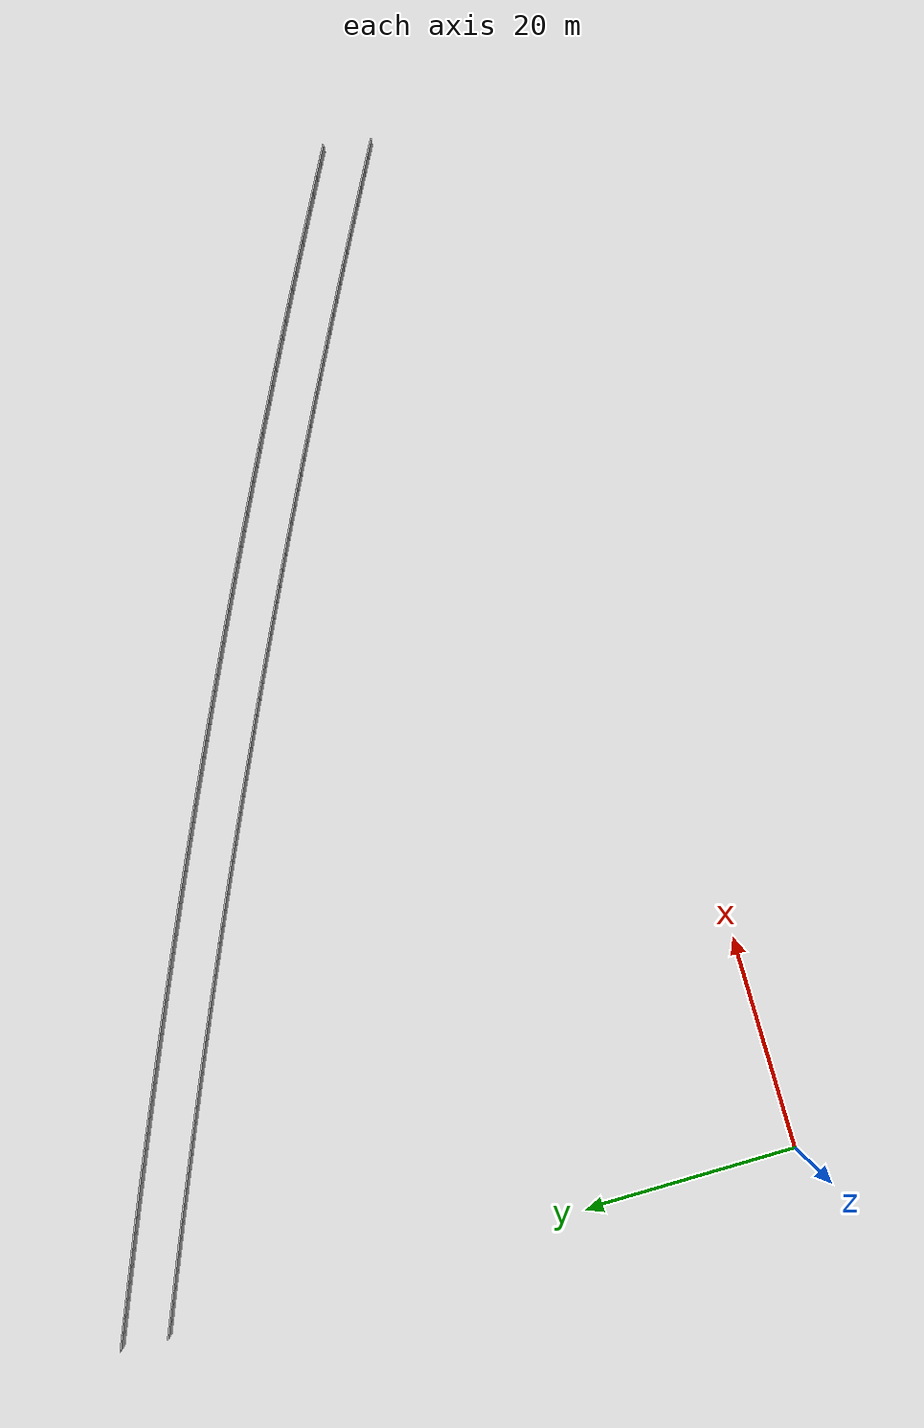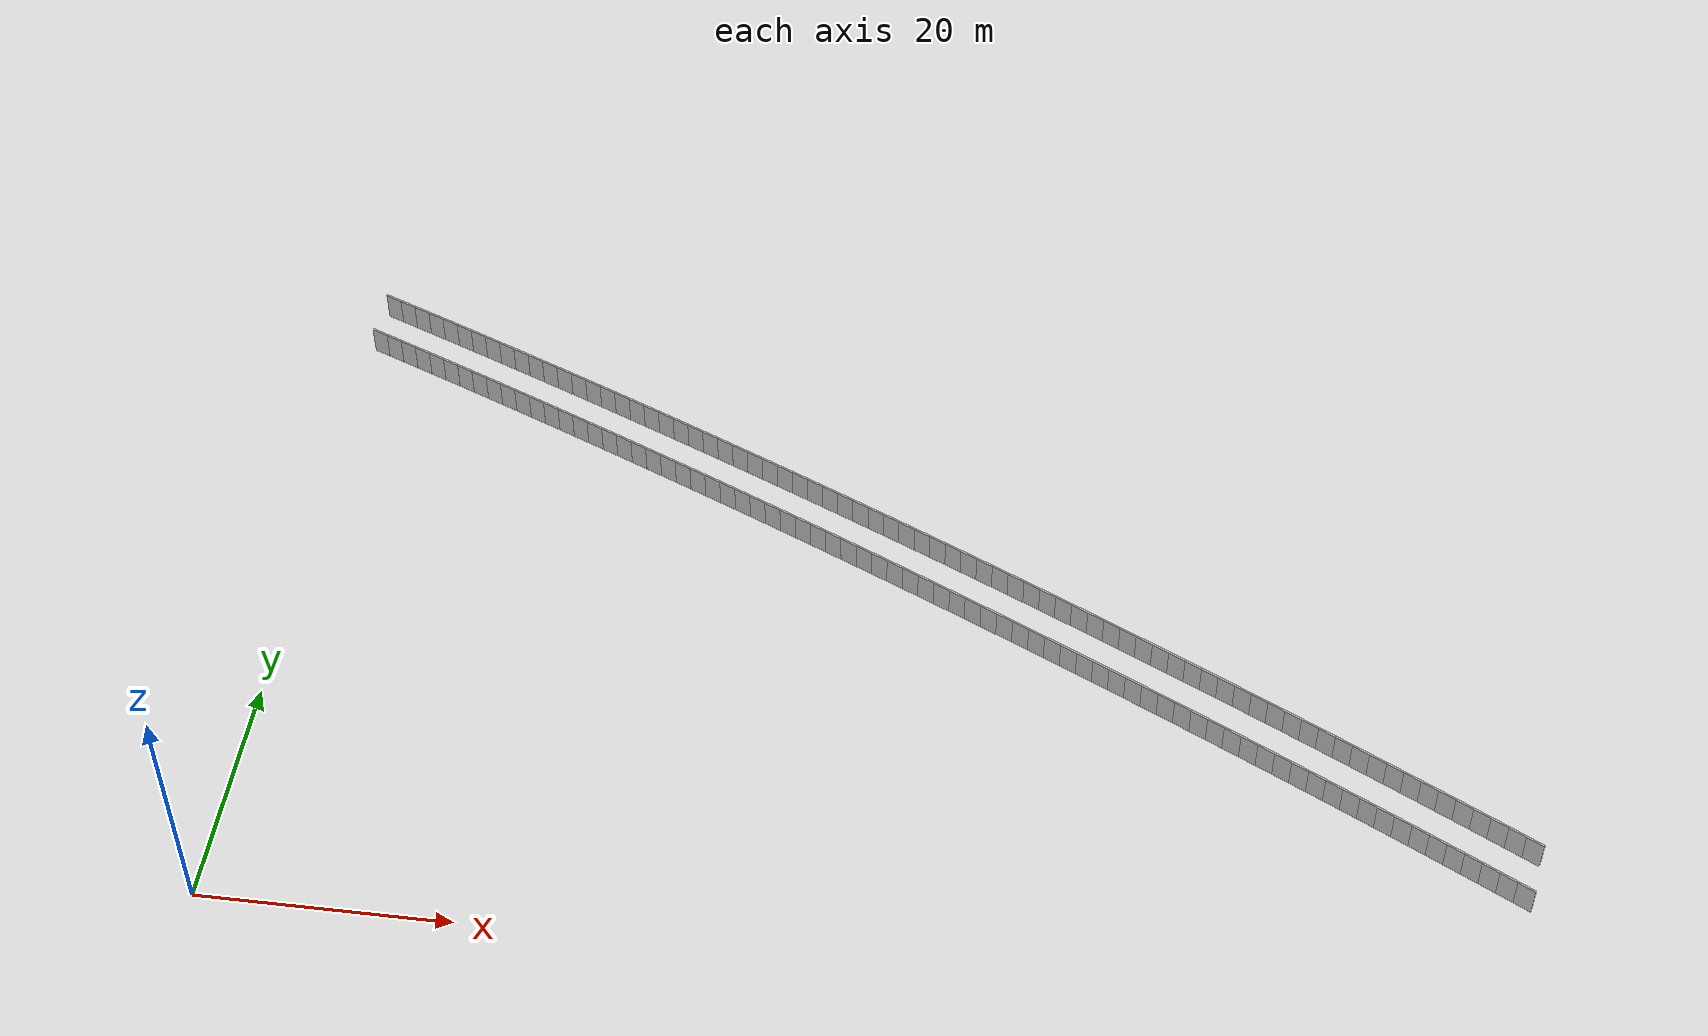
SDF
<sdf version="1.6">
 <model name="sps_1722">
  <static>1</static>
  <allow_auto_disable>0</allow_auto_disable>
  <link name="Wall10633">
   <collision name="collision"><geometry><box><size>1.49658 0.15 2.5</size></box></geometry></collision>
   <visual name="visual">
    <geometry><box><size>1.49658 0.15 2.5</size></box></geometry>
    <transparency>0.0</transparency>
   </visual>
   <pose>98.8934 11.6725 1.25 0 -0 2.63388</pose>
  </link>
  <link name="Wall10634">
   <collision name="collision"><geometry><box><size>1.49649 0.15 2.5</size></box></geometry></collision>
   <visual name="visual">
    <geometry><box><size>1.49649 0.15 2.5</size></box></geometry>
    <transparency>0.0</transparency>
   </visual>
   <pose>97.585 12.3989 1.25 0 -0 2.63567</pose>
  </link>
  <link name="Wall10635">
   <collision name="collision"><geometry><box><size>1.49646 0.15 2.5</size></box></geometry></collision>
   <visual name="visual">
    <geometry><box><size>1.49646 0.15 2.5</size></box></geometry>
    <transparency>0.0</transparency>
   </visual>
   <pose>96.2754 13.1232 1.25 0 -0 2.63706</pose>
  </link>
  <link name="Wall10636">
   <collision name="collision"><geometry><box><size>1.49663 0.15 2.5</size></box></geometry></collision>
   <visual name="visual">
    <geometry><box><size>1.49663 0.15 2.5</size></box></geometry>
    <transparency>0.0</transparency>
   </visual>
   <pose>94.9647 13.8455 1.25 0 -0 2.6388</pose>
  </link>
  <link name="Wall10637">
   <collision name="collision"><geometry><box><size>1.49643 0.15 2.5</size></box></geometry></collision>
   <visual name="visual">
    <geometry><box><size>1.49643 0.15 2.5</size></box></geometry>
    <transparency>0.0</transparency>
   </visual>
   <pose>93.6529 14.5656 1.25 0 -0 2.6404</pose>
  </link>
  <link name="Wall10638">
   <collision name="collision"><geometry><box><size>1.49649 0.15 2.5</size></box></geometry></collision>
   <visual name="visual">
    <geometry><box><size>1.49649 0.15 2.5</size></box></geometry>
    <transparency>0.0</transparency>
   </visual>
   <pose>92.34 15.2837 1.25 0 -0 2.64177</pose>
  </link>
  <link name="Wall10639">
   <collision name="collision"><geometry><box><size>1.49655 0.15 2.5</size></box></geometry></collision>
   <visual name="visual">
    <geometry><box><size>1.49655 0.15 2.5</size></box></geometry>
    <transparency>0.0</transparency>
   </visual>
   <pose>91.0258 15.9997 1.25 0 -0 2.64365</pose>
  </link>
  <link name="Wall10640">
   <collision name="collision"><geometry><box><size>1.49656 0.15 2.5</size></box></geometry></collision>
   <visual name="visual">
    <geometry><box><size>1.49656 0.15 2.5</size></box></geometry>
    <transparency>0.0</transparency>
   </visual>
   <pose>89.7105 16.7136 1.25 0 -0 2.645</pose>
  </link>
  <link name="Wall10641">
   <collision name="collision"><geometry><box><size>1.49654 0.15 2.5</size></box></geometry></collision>
   <visual name="visual">
    <geometry><box><size>1.49654 0.15 2.5</size></box></geometry>
    <transparency>0.0</transparency>
   </visual>
   <pose>88.3942 17.4255 1.25 0 -0 2.64666</pose>
  </link>
  <link name="Wall10642">
   <collision name="collision"><geometry><box><size>1.49663 0.15 2.5</size></box></geometry></collision>
   <visual name="visual">
    <geometry><box><size>1.49663 0.15 2.5</size></box></geometry>
    <transparency>0.0</transparency>
   </visual>
   <pose>87.0766 18.1352 1.25 0 -0 2.64836</pose>
  </link>
  <link name="Wall10643">
   <collision name="collision"><geometry><box><size>1.49632 0.15 2.5</size></box></geometry></collision>
   <visual name="visual">
    <geometry><box><size>1.49632 0.15 2.5</size></box></geometry>
    <transparency>0.0</transparency>
   </visual>
   <pose>85.758 18.8428 1.25 0 -0 2.64978</pose>
  </link>
  <link name="Wall10644">
   <collision name="collision"><geometry><box><size>1.49655 0.15 2.5</size></box></geometry></collision>
   <visual name="visual">
    <geometry><box><size>1.49655 0.15 2.5</size></box></geometry>
    <transparency>0.0</transparency>
   </visual>
   <pose>84.4383 19.5483 1.25 0 -0 2.65157</pose>
  </link>
  <link name="Wall10645">
   <collision name="collision"><geometry><box><size>1.49652 0.15 2.5</size></box></geometry></collision>
   <visual name="visual">
    <geometry><box><size>1.49652 0.15 2.5</size></box></geometry>
    <transparency>0.0</transparency>
   </visual>
   <pose>83.1173 20.2517 1.25 0 -0 2.65299</pose>
  </link>
  <link name="Wall10646">
   <collision name="collision"><geometry><box><size>1.49641 0.15 2.5</size></box></geometry></collision>
   <visual name="visual">
    <geometry><box><size>1.49641 0.15 2.5</size></box></geometry>
    <transparency>0.0</transparency>
   </visual>
   <pose>81.7954 20.9531 1.25 0 -0 2.65452</pose>
  </link>
  <link name="Wall10647">
   <collision name="collision"><geometry><box><size>1.49662 0.15 2.5</size></box></geometry></collision>
   <visual name="visual">
    <geometry><box><size>1.49662 0.15 2.5</size></box></geometry>
    <transparency>0.0</transparency>
   </visual>
   <pose>80.4723 21.6524 1.25 0 -0 2.65626</pose>
  </link>
  <link name="Wall10648">
   <collision name="collision"><geometry><box><size>1.49646 0.15 2.5</size></box></geometry></collision>
   <visual name="visual">
    <geometry><box><size>1.49646 0.15 2.5</size></box></geometry>
    <transparency>0.0</transparency>
   </visual>
   <pose>79.1481 22.3495 1.25 0 -0 2.65786</pose>
  </link>
  <link name="Wall10649">
   <collision name="collision"><geometry><box><size>1.49656 0.15 2.5</size></box></geometry></collision>
   <visual name="visual">
    <geometry><box><size>1.49656 0.15 2.5</size></box></geometry>
    <transparency>0.0</transparency>
   </visual>
   <pose>77.8228 23.0446 1.25 0 -0 2.65923</pose>
  </link>
  <link name="Wall10650">
   <collision name="collision"><geometry><box><size>1.49654 0.15 2.5</size></box></geometry></collision>
   <visual name="visual">
    <geometry><box><size>1.49654 0.15 2.5</size></box></geometry>
    <transparency>0.0</transparency>
   </visual>
   <pose>76.4964 23.7376 1.25 0 -0 2.66102</pose>
  </link>
  <link name="Wall10651">
   <collision name="collision"><geometry><box><size>1.49645 0.15 2.5</size></box></geometry></collision>
   <visual name="visual">
    <geometry><box><size>1.49645 0.15 2.5</size></box></geometry>
    <transparency>0.0</transparency>
   </visual>
   <pose>75.1688 24.4284 1.25 0 -0 2.66255</pose>
  </link>
  <link name="Wall10652">
   <collision name="collision"><geometry><box><size>1.49658 0.15 2.5</size></box></geometry></collision>
   <visual name="visual">
    <geometry><box><size>1.49658 0.15 2.5</size></box></geometry>
    <transparency>0.0</transparency>
   </visual>
   <pose>73.8403 25.1172 1.25 0 -0 2.66406</pose>
  </link>
  <link name="Wall10653">
   <collision name="collision"><geometry><box><size>1.49633 0.15 2.5</size></box></geometry></collision>
   <visual name="visual">
    <geometry><box><size>1.49633 0.15 2.5</size></box></geometry>
    <transparency>0.0</transparency>
   </visual>
   <pose>72.5107 25.8039 1.25 0 -0 2.66563</pose>
  </link>
  <link name="Wall10654">
   <collision name="collision"><geometry><box><size>1.49666 0.15 2.5</size></box></geometry></collision>
   <visual name="visual">
    <geometry><box><size>1.49666 0.15 2.5</size></box></geometry>
    <transparency>0.0</transparency>
   </visual>
   <pose>71.18 26.4885 1.25 0 -0 2.66726</pose>
  </link>
  <link name="Wall10655">
   <collision name="collision"><geometry><box><size>1.49652 0.15 2.5</size></box></geometry></collision>
   <visual name="visual">
    <geometry><box><size>1.49652 0.15 2.5</size></box></geometry>
    <transparency>0.0</transparency>
   </visual>
   <pose>69.848 27.171 1.25 0 -0 2.66886</pose>
  </link>
  <link name="Wall10656">
   <collision name="collision"><geometry><box><size>1.49639 0.15 2.5</size></box></geometry></collision>
   <visual name="visual">
    <geometry><box><size>1.49639 0.15 2.5</size></box></geometry>
    <transparency>0.0</transparency>
   </visual>
   <pose>68.5152 27.8513 1.25 0 -0 2.67047</pose>
  </link>
  <link name="Wall10657">
   <collision name="collision"><geometry><box><size>1.4966 0.15 2.5</size></box></geometry></collision>
   <visual name="visual">
    <geometry><box><size>1.4966 0.15 2.5</size></box></geometry>
    <transparency>0.0</transparency>
   </visual>
   <pose>67.1812 28.5295 1.25 0 -0 2.672</pose>
  </link>
  <link name="Wall10658">
   <collision name="collision"><geometry><box><size>1.49659 0.15 2.5</size></box></geometry></collision>
   <visual name="visual">
    <geometry><box><size>1.49659 0.15 2.5</size></box></geometry>
    <transparency>0.0</transparency>
   </visual>
   <pose>65.8461 29.2057 1.25 0 -0 2.67355</pose>
  </link>
  <link name="Wall10659">
   <collision name="collision"><geometry><box><size>1.49639 0.15 2.5</size></box></geometry></collision>
   <visual name="visual">
    <geometry><box><size>1.49639 0.15 2.5</size></box></geometry>
    <transparency>0.0</transparency>
   </visual>
   <pose>64.5099 29.8797 1.25 0 -0 2.67526</pose>
  </link>
  <link name="Wall10660">
   <collision name="collision"><geometry><box><size>1.49655 0.15 2.5</size></box></geometry></collision>
   <visual name="visual">
    <geometry><box><size>1.49655 0.15 2.5</size></box></geometry>
    <transparency>0.0</transparency>
   </visual>
   <pose>63.1728 30.5515 1.25 0 -0 2.67678</pose>
  </link>
  <link name="Wall10661">
   <collision name="collision"><geometry><box><size>1.49654 0.15 2.5</size></box></geometry></collision>
   <visual name="visual">
    <geometry><box><size>1.49654 0.15 2.5</size></box></geometry>
    <transparency>0.0</transparency>
   </visual>
   <pose>61.8345 31.2213 1.25 0 -0 2.67833</pose>
  </link>
  <link name="Wall10662">
   <collision name="collision"><geometry><box><size>1.49668 0.15 2.5</size></box></geometry></collision>
   <visual name="visual">
    <geometry><box><size>1.49668 0.15 2.5</size></box></geometry>
    <transparency>0.0</transparency>
   </visual>
   <pose>60.495 31.889 1.25 0 -0 2.67997</pose>
  </link>
  <link name="Wall10663">
   <collision name="collision"><geometry><box><size>1.49634 0.15 2.5</size></box></geometry></collision>
   <visual name="visual">
    <geometry><box><size>1.49634 0.15 2.5</size></box></geometry>
    <transparency>0.0</transparency>
   </visual>
   <pose>59.1547 32.5545 1.25 0 -0 2.68154</pose>
  </link>
  <link name="Wall10664">
   <collision name="collision"><geometry><box><size>1.49654 0.15 2.5</size></box></geometry></collision>
   <visual name="visual">
    <geometry><box><size>1.49654 0.15 2.5</size></box></geometry>
    <transparency>0.0</transparency>
   </visual>
   <pose>57.8133 33.2178 1.25 0 -0 2.6832</pose>
  </link>
  <link name="Wall10665">
   <collision name="collision"><geometry><box><size>1.49647 0.15 2.5</size></box></geometry></collision>
   <visual name="visual">
    <geometry><box><size>1.49647 0.15 2.5</size></box></geometry>
    <transparency>0.0</transparency>
   </visual>
   <pose>56.4708 33.879 1.25 0 -0 2.68468</pose>
  </link>
  <link name="Wall10666">
   <collision name="collision"><geometry><box><size>1.49641 0.15 2.5</size></box></geometry></collision>
   <visual name="visual">
    <geometry><box><size>1.49641 0.15 2.5</size></box></geometry>
    <transparency>0.0</transparency>
   </visual>
   <pose>55.1273 34.5381 1.25 0 -0 2.68634</pose>
  </link>
  <link name="Wall10667">
   <collision name="collision"><geometry><box><size>1.49673 0.15 2.5</size></box></geometry></collision>
   <visual name="visual">
    <geometry><box><size>1.49673 0.15 2.5</size></box></geometry>
    <transparency>0.0</transparency>
   </visual>
   <pose>53.7827 35.1952 1.25 0 -0 2.68776</pose>
  </link>
  <link name="Wall10668">
   <collision name="collision"><geometry><box><size>1.4964 0.15 2.5</size></box></geometry></collision>
   <visual name="visual">
    <geometry><box><size>1.4964 0.15 2.5</size></box></geometry>
    <transparency>0.0</transparency>
   </visual>
   <pose>52.4371 35.8502 1.25 0 -0 2.68942</pose>
  </link>
  <link name="Wall10669">
   <collision name="collision"><geometry><box><size>1.49654 0.15 2.5</size></box></geometry></collision>
   <visual name="visual">
    <geometry><box><size>1.49654 0.15 2.5</size></box></geometry>
    <transparency>0.0</transparency>
   </visual>
   <pose>51.0904 36.5029 1.25 0 -0 2.6911</pose>
  </link>
  <link name="Wall10670">
   <collision name="collision"><geometry><box><size>1.49646 0.15 2.5</size></box></geometry></collision>
   <visual name="visual">
    <geometry><box><size>1.49646 0.15 2.5</size></box></geometry>
    <transparency>0.0</transparency>
   </visual>
   <pose>49.7427 37.1534 1.25 0 -0 2.6927</pose>
  </link>
  <link name="Wall10671">
   <collision name="collision"><geometry><box><size>1.49647 0.15 2.5</size></box></geometry></collision>
   <visual name="visual">
    <geometry><box><size>1.49647 0.15 2.5</size></box></geometry>
    <transparency>0.0</transparency>
   </visual>
   <pose>48.394 37.8018 1.25 0 -0 2.6942</pose>
  </link>
  <link name="Wall10672">
   <collision name="collision"><geometry><box><size>1.4967 0.15 2.5</size></box></geometry></collision>
   <visual name="visual">
    <geometry><box><size>1.4967 0.15 2.5</size></box></geometry>
    <transparency>0.0</transparency>
   </visual>
   <pose>47.0442 38.4482 1.25 0 -0 2.69576</pose>
  </link>
  <link name="Wall10673">
   <collision name="collision"><geometry><box><size>1.49639 0.15 2.5</size></box></geometry></collision>
   <visual name="visual">
    <geometry><box><size>1.49639 0.15 2.5</size></box></geometry>
    <transparency>0.0</transparency>
   </visual>
   <pose>45.6934 39.0924 1.25 0 -0 2.69743</pose>
  </link>
  <link name="Wall10674">
   <collision name="collision"><geometry><box><size>1.49663 0.15 2.5</size></box></geometry></collision>
   <visual name="visual">
    <geometry><box><size>1.49663 0.15 2.5</size></box></geometry>
    <transparency>0.0</transparency>
   </visual>
   <pose>44.3416 39.7344 1.25 0 -0 2.69899</pose>
  </link>
  <link name="Wall10675">
   <collision name="collision"><geometry><box><size>1.49635 0.15 2.5</size></box></geometry></collision>
   <visual name="visual">
    <geometry><box><size>1.49635 0.15 2.5</size></box></geometry>
    <transparency>0.0</transparency>
   </visual>
   <pose>42.9889 40.3743 1.25 0 -0 2.70053</pose>
  </link>
  <link name="Wall10676">
   <collision name="collision"><geometry><box><size>1.49651 0.15 2.5</size></box></geometry></collision>
   <visual name="visual">
    <geometry><box><size>1.49651 0.15 2.5</size></box></geometry>
    <transparency>0.0</transparency>
   </visual>
   <pose>41.6352 41.0121 1.25 0 -0 2.70202</pose>
  </link>
  <link name="Wall10677">
   <collision name="collision"><geometry><box><size>1.49647 0.15 2.5</size></box></geometry></collision>
   <visual name="visual">
    <geometry><box><size>1.49647 0.15 2.5</size></box></geometry>
    <transparency>0.0</transparency>
   </visual>
   <pose>40.2804 41.6477 1.25 0 -0 2.70381</pose>
  </link>
  <link name="Wall10678">
   <collision name="collision"><geometry><box><size>1.49669 0.15 2.5</size></box></geometry></collision>
   <visual name="visual">
    <geometry><box><size>1.49669 0.15 2.5</size></box></geometry>
    <transparency>0.0</transparency>
   </visual>
   <pose>38.9245 42.2812 1.25 0 -0 2.70523</pose>
  </link>
  <link name="Wall10679">
   <collision name="collision"><geometry><box><size>1.49635 0.15 2.5</size></box></geometry></collision>
   <visual name="visual">
    <geometry><box><size>1.49635 0.15 2.5</size></box></geometry>
    <transparency>0.0</transparency>
   </visual>
   <pose>37.5676 42.9126 1.25 0 -0 2.70688</pose>
  </link>
  <link name="Wall10680">
   <collision name="collision"><geometry><box><size>1.49664 0.15 2.5</size></box></geometry></collision>
   <visual name="visual">
    <geometry><box><size>1.49664 0.15 2.5</size></box></geometry>
    <transparency>0.0</transparency>
   </visual>
   <pose>36.2099 43.5418 1.25 0 -0 2.70841</pose>
  </link>
  <link name="Wall10681">
   <collision name="collision"><geometry><box><size>1.49663 0.15 2.5</size></box></geometry></collision>
   <visual name="visual">
    <geometry><box><size>1.49663 0.15 2.5</size></box></geometry>
    <transparency>0.0</transparency>
   </visual>
   <pose>34.8509 44.1689 1.25 0 -0 2.71007</pose>
  </link>
  <link name="Wall10682">
   <collision name="collision"><geometry><box><size>1.49638 0.15 2.5</size></box></geometry></collision>
   <visual name="visual">
    <geometry><box><size>1.49638 0.15 2.5</size></box></geometry>
    <transparency>0.0</transparency>
   </visual>
   <pose>33.4911 44.7938 1.25 0 -0 2.71161</pose>
  </link>
  <link name="Wall10683">
   <collision name="collision"><geometry><box><size>1.4966 0.15 2.5</size></box></geometry></collision>
   <visual name="visual">
    <geometry><box><size>1.4966 0.15 2.5</size></box></geometry>
    <transparency>0.0</transparency>
   </visual>
   <pose>32.1304 45.4165 1.25 0 -0 2.71324</pose>
  </link>
  <link name="Wall10684">
   <collision name="collision"><geometry><box><size>1.49639 0.15 2.5</size></box></geometry></collision>
   <visual name="visual">
    <geometry><box><size>1.49639 0.15 2.5</size></box></geometry>
    <transparency>0.0</transparency>
   </visual>
   <pose>30.7686 46.037 1.25 0 -0 2.71484</pose>
  </link>
  <link name="Wall10685">
   <collision name="collision"><geometry><box><size>1.49643 0.15 2.5</size></box></geometry></collision>
   <visual name="visual">
    <geometry><box><size>1.49643 0.15 2.5</size></box></geometry>
    <transparency>0.0</transparency>
   </visual>
   <pose>29.4059 46.6553 1.25 0 -0 2.71646</pose>
  </link>
  <link name="Wall10686">
   <collision name="collision"><geometry><box><size>1.49651 0.15 2.5</size></box></geometry></collision>
   <visual name="visual">
    <geometry><box><size>1.49651 0.15 2.5</size></box></geometry>
    <transparency>0.0</transparency>
   </visual>
   <pose>28.0422 47.2715 1.25 0 -0 2.71792</pose>
  </link>
  <link name="Wall10687">
   <collision name="collision"><geometry><box><size>1.49653 0.15 2.5</size></box></geometry></collision>
   <visual name="visual">
    <geometry><box><size>1.49653 0.15 2.5</size></box></geometry>
    <transparency>0.0</transparency>
   </visual>
   <pose>26.6775 47.8856 1.25 0 -0 2.71958</pose>
  </link>
  <link name="Wall10688">
   <collision name="collision"><geometry><box><size>1.49647 0.15 2.5</size></box></geometry></collision>
   <visual name="visual">
    <geometry><box><size>1.49647 0.15 2.5</size></box></geometry>
    <transparency>0.0</transparency>
   </visual>
   <pose>25.3118 48.4975 1.25 0 -0 2.72117</pose>
  </link>
  <link name="Wall10689">
   <collision name="collision"><geometry><box><size>1.4966 0.15 2.5</size></box></geometry></collision>
   <visual name="visual">
    <geometry><box><size>1.4966 0.15 2.5</size></box></geometry>
    <transparency>0.0</transparency>
   </visual>
   <pose>23.9451 49.1072 1.25 0 -0 2.72277</pose>
  </link>
  <link name="Wall10690">
   <collision name="collision"><geometry><box><size>1.49643 0.15 2.5</size></box></geometry></collision>
   <visual name="visual">
    <geometry><box><size>1.49643 0.15 2.5</size></box></geometry>
    <transparency>0.0</transparency>
   </visual>
   <pose>22.5774 49.7148 1.25 0 -0 2.72424</pose>
  </link>
  <link name="Wall10691">
   <collision name="collision"><geometry><box><size>1.49641 0.15 2.5</size></box></geometry></collision>
   <visual name="visual">
    <geometry><box><size>1.49641 0.15 2.5</size></box></geometry>
    <transparency>0.0</transparency>
   </visual>
   <pose>21.2089 50.3202 1.25 0 -0 2.72597</pose>
  </link>
  <link name="Wall10692">
   <collision name="collision"><geometry><box><size>1.49652 0.15 2.5</size></box></geometry></collision>
   <visual name="visual">
    <geometry><box><size>1.49652 0.15 2.5</size></box></geometry>
    <transparency>0.0</transparency>
   </visual>
   <pose>19.8394 50.9234 1.25 0 -0 2.72743</pose>
  </link>
  <link name="Wall10693">
   <collision name="collision"><geometry><box><size>1.49673 0.15 2.5</size></box></geometry></collision>
   <visual name="visual">
    <geometry><box><size>1.49673 0.15 2.5</size></box></geometry>
    <transparency>0.0</transparency>
   </visual>
   <pose>18.4688 51.5245 1.25 0 -0 2.72914</pose>
  </link>
  <link name="Wall10694">
   <collision name="collision"><geometry><box><size>1.49645 0.15 2.5</size></box></geometry></collision>
   <visual name="visual">
    <geometry><box><size>1.49645 0.15 2.5</size></box></geometry>
    <transparency>0.0</transparency>
   </visual>
   <pose>17.0973 52.1235 1.25 0 -0 2.73048</pose>
  </link>
  <link name="Wall10695">
   <collision name="collision"><geometry><box><size>1.4966 0.15 2.5</size></box></geometry></collision>
   <visual name="visual">
    <geometry><box><size>1.4966 0.15 2.5</size></box></geometry>
    <transparency>0.0</transparency>
   </visual>
   <pose>15.725 52.7203 1.25 0 -0 2.7323</pose>
  </link>
  <link name="Wall10696">
   <collision name="collision"><geometry><box><size>1.49651 0.15 2.5</size></box></geometry></collision>
   <visual name="visual">
    <geometry><box><size>1.49651 0.15 2.5</size></box></geometry>
    <transparency>0.0</transparency>
   </visual>
   <pose>14.3516 53.3148 1.25 0 -0 2.73388</pose>
  </link>
  <link name="Wall10697">
   <collision name="collision"><geometry><box><size>1.49641 0.15 2.5</size></box></geometry></collision>
   <visual name="visual">
    <geometry><box><size>1.49641 0.15 2.5</size></box></geometry>
    <transparency>0.0</transparency>
   </visual>
   <pose>12.9773 53.9072 1.25 0 -0 2.73527</pose>
  </link>
  <link name="Wall10698">
   <collision name="collision"><geometry><box><size>1.4964 0.15 2.5</size></box></geometry></collision>
   <visual name="visual">
    <geometry><box><size>1.4964 0.15 2.5</size></box></geometry>
    <transparency>0.0</transparency>
   </visual>
   <pose>11.6023 54.4974 1.25 0 -0 2.73704</pose>
  </link>
  <link name="Wall10699">
   <collision name="collision"><geometry><box><size>1.49653 0.15 2.5</size></box></geometry></collision>
   <visual name="visual">
    <geometry><box><size>1.49653 0.15 2.5</size></box></geometry>
    <transparency>0.0</transparency>
   </visual>
   <pose>10.2262 55.0854 1.25 0 -0 2.7385</pose>
  </link>
  <link name="Wall10700">
   <collision name="collision"><geometry><box><size>1.49653 0.15 2.5</size></box></geometry></collision>
   <visual name="visual">
    <geometry><box><size>1.49653 0.15 2.5</size></box></geometry>
    <transparency>0.0</transparency>
   </visual>
   <pose>8.84905 55.6712 1.25 0 -0 2.74027</pose>
  </link>
  <link name="Wall10701">
   <collision name="collision"><geometry><box><size>1.49642 0.15 2.5</size></box></geometry></collision>
   <visual name="visual">
    <geometry><box><size>1.49642 0.15 2.5</size></box></geometry>
    <transparency>0.0</transparency>
   </visual>
   <pose>7.47106 56.2548 1.25 0 -0 2.7417</pose>
  </link>
  <link name="Wall10702">
   <collision name="collision"><geometry><box><size>1.49658 0.15 2.5</size></box></geometry></collision>
   <visual name="visual">
    <geometry><box><size>1.49658 0.15 2.5</size></box></geometry>
    <transparency>0.0</transparency>
   </visual>
   <pose>6.09215 56.8363 1.25 0 -0 2.74334</pose>
  </link>
  <link name="Wall10703">
   <collision name="collision"><geometry><box><size>1.49666 0.15 2.5</size></box></geometry></collision>
   <visual name="visual">
    <geometry><box><size>1.49666 0.15 2.5</size></box></geometry>
    <transparency>0.0</transparency>
   </visual>
   <pose>4.71224 57.4157 1.25 0 -0 2.74478</pose>
  </link>
  <link name="Wall10704">
   <collision name="collision"><geometry><box><size>1.49651 0.15 2.5</size></box></geometry></collision>
   <visual name="visual">
    <geometry><box><size>1.49651 0.15 2.5</size></box></geometry>
    <transparency>0.0</transparency>
   </visual>
   <pose>3.33144 57.9929 1.25 0 -0 2.74651</pose>
  </link>
  <link name="Wall10705">
   <collision name="collision"><geometry><box><size>1.49657 0.15 2.5</size></box></geometry></collision>
   <visual name="visual">
    <geometry><box><size>1.49657 0.15 2.5</size></box></geometry>
    <transparency>0.0</transparency>
   </visual>
   <pose>1.94973 58.5678 1.25 0 -0 2.74811</pose>
  </link>
  <link name="Wall10706">
   <collision name="collision"><geometry><box><size>1.49646 0.15 2.5</size></box></geometry></collision>
   <visual name="visual">
    <geometry><box><size>1.49646 0.15 2.5</size></box></geometry>
    <transparency>0.0</transparency>
   </visual>
   <pose>0.56713 59.1405 1.25 0 -0 2.74967</pose>
  </link>
  <link name="Wall11231">
   <collision name="collision"><geometry><box><size>1.503 0.15 2.5</size></box></geometry></collision>
   <visual name="visual">
    <geometry><box><size>1.503 0.15 2.5</size></box></geometry>
    <transparency>0.0</transparency>
   </visual>
   <pose>99.5911 16.0204 1.25 0 -0 2.63547</pose>
  </link>
  <link name="Wall11232">
   <collision name="collision"><geometry><box><size>1.50314 0.15 2.5</size></box></geometry></collision>
   <visual name="visual">
    <geometry><box><size>1.50314 0.15 2.5</size></box></geometry>
    <transparency>0.0</transparency>
   </visual>
   <pose>98.2759 16.7479 1.25 0 -0 2.63724</pose>
  </link>
  <link name="Wall11233">
   <collision name="collision"><geometry><box><size>1.50292 0.15 2.5</size></box></geometry></collision>
   <visual name="visual">
    <geometry><box><size>1.50292 0.15 2.5</size></box></geometry>
    <transparency>0.0</transparency>
   </visual>
   <pose>96.9595 17.4733 1.25 0 -0 2.63869</pose>
  </link>
  <link name="Wall11234">
   <collision name="collision"><geometry><box><size>1.50306 0.15 2.5</size></box></geometry></collision>
   <visual name="visual">
    <geometry><box><size>1.50306 0.15 2.5</size></box></geometry>
    <transparency>0.0</transparency>
   </visual>
   <pose>95.642 18.1966 1.25 0 -0 2.64036</pose>
  </link>
  <link name="Wall11235">
   <collision name="collision"><geometry><box><size>1.50289 0.15 2.5</size></box></geometry></collision>
   <visual name="visual">
    <geometry><box><size>1.50289 0.15 2.5</size></box></geometry>
    <transparency>0.0</transparency>
   </visual>
   <pose>94.3233 18.9177 1.25 0 -0 2.64201</pose>
  </link>
  <link name="Wall11236">
   <collision name="collision"><geometry><box><size>1.50328 0.15 2.5</size></box></geometry></collision>
   <visual name="visual">
    <geometry><box><size>1.50328 0.15 2.5</size></box></geometry>
    <transparency>0.0</transparency>
   </visual>
   <pose>93.0033 19.6368 1.25 0 -0 2.64349</pose>
  </link>
  <link name="Wall11237">
   <collision name="collision"><geometry><box><size>1.50309 0.15 2.5</size></box></geometry></collision>
   <visual name="visual">
    <geometry><box><size>1.50309 0.15 2.5</size></box></geometry>
    <transparency>0.0</transparency>
   </visual>
   <pose>91.6822 20.3539 1.25 0 -0 2.64509</pose>
  </link>
  <link name="Wall11238">
   <collision name="collision"><geometry><box><size>1.50323 0.15 2.5</size></box></geometry></collision>
   <visual name="visual">
    <geometry><box><size>1.50323 0.15 2.5</size></box></geometry>
    <transparency>0.0</transparency>
   </visual>
   <pose>90.36 21.0689 1.25 0 -0 2.64662</pose>
  </link>
  <link name="Wall11239">
   <collision name="collision"><geometry><box><size>1.50302 0.15 2.5</size></box></geometry></collision>
   <visual name="visual">
    <geometry><box><size>1.50302 0.15 2.5</size></box></geometry>
    <transparency>0.0</transparency>
   </visual>
   <pose>89.0367 21.7818 1.25 0 -0 2.64825</pose>
  </link>
  <link name="Wall11240">
   <collision name="collision"><geometry><box><size>1.50306 0.15 2.5</size></box></geometry></collision>
   <visual name="visual">
    <geometry><box><size>1.50306 0.15 2.5</size></box></geometry>
    <transparency>0.0</transparency>
   </visual>
   <pose>87.7123 22.4925 1.25 0 -0 2.64992</pose>
  </link>
  <link name="Wall11241">
   <collision name="collision"><geometry><box><size>1.50297 0.15 2.5</size></box></geometry></collision>
   <visual name="visual">
    <geometry><box><size>1.50297 0.15 2.5</size></box></geometry>
    <transparency>0.0</transparency>
   </visual>
   <pose>86.3868 23.2011 1.25 0 -0 2.65141</pose>
  </link>
  <link name="Wall11242">
   <collision name="collision"><geometry><box><size>1.50313 0.15 2.5</size></box></geometry></collision>
   <visual name="visual">
    <geometry><box><size>1.50313 0.15 2.5</size></box></geometry>
    <transparency>0.0</transparency>
   </visual>
   <pose>85.0602 23.9077 1.25 0 -0 2.65294</pose>
  </link>
  <link name="Wall11243">
   <collision name="collision"><geometry><box><size>1.50309 0.15 2.5</size></box></geometry></collision>
   <visual name="visual">
    <geometry><box><size>1.50309 0.15 2.5</size></box></geometry>
    <transparency>0.0</transparency>
   </visual>
   <pose>83.7324 24.6122 1.25 0 -0 2.65463</pose>
  </link>
  <link name="Wall11244">
   <collision name="collision"><geometry><box><size>1.50301 0.15 2.5</size></box></geometry></collision>
   <visual name="visual">
    <geometry><box><size>1.50301 0.15 2.5</size></box></geometry>
    <transparency>0.0</transparency>
   </visual>
   <pose>82.4036 25.3145 1.25 0 -0 2.6562</pose>
  </link>
  <link name="Wall11245">
   <collision name="collision"><geometry><box><size>1.50313 0.15 2.5</size></box></geometry></collision>
   <visual name="visual">
    <geometry><box><size>1.50313 0.15 2.5</size></box></geometry>
    <transparency>0.0</transparency>
   </visual>
   <pose>81.0735 26.0147 1.25 0 -0 2.65781</pose>
  </link>
  <link name="Wall11246">
   <collision name="collision"><geometry><box><size>1.50303 0.15 2.5</size></box></geometry></collision>
   <visual name="visual">
    <geometry><box><size>1.50303 0.15 2.5</size></box></geometry>
    <transparency>0.0</transparency>
   </visual>
   <pose>79.7425 26.7129 1.25 0 -0 2.65924</pose>
  </link>
  <link name="Wall11247">
   <collision name="collision"><geometry><box><size>1.50315 0.15 2.5</size></box></geometry></collision>
   <visual name="visual">
    <geometry><box><size>1.50315 0.15 2.5</size></box></geometry>
    <transparency>0.0</transparency>
   </visual>
   <pose>78.4103 27.409 1.25 0 -0 2.66093</pose>
  </link>
  <link name="Wall11248">
   <collision name="collision"><geometry><box><size>1.503 0.15 2.5</size></box></geometry></collision>
   <visual name="visual">
    <geometry><box><size>1.503 0.15 2.5</size></box></geometry>
    <transparency>0.0</transparency>
   </visual>
   <pose>77.077 28.1029 1.25 0 -0 2.66253</pose>
  </link>
  <link name="Wall11249">
   <collision name="collision"><geometry><box><size>1.50307 0.15 2.5</size></box></geometry></collision>
   <visual name="visual">
    <geometry><box><size>1.50307 0.15 2.5</size></box></geometry>
    <transparency>0.0</transparency>
   </visual>
   <pose>75.7425 28.7946 1.25 0 -0 2.6642</pose>
  </link>
  <link name="Wall11250">
   <collision name="collision"><geometry><box><size>1.50302 0.15 2.5</size></box></geometry></collision>
   <visual name="visual">
    <geometry><box><size>1.50302 0.15 2.5</size></box></geometry>
    <transparency>0.0</transparency>
   </visual>
   <pose>74.407 29.4842 1.25 0 -0 2.66569</pose>
  </link>
  <link name="Wall11251">
   <collision name="collision"><geometry><box><size>1.50313 0.15 2.5</size></box></geometry></collision>
   <visual name="visual">
    <geometry><box><size>1.50313 0.15 2.5</size></box></geometry>
    <transparency>0.0</transparency>
   </visual>
   <pose>73.0705 30.1718 1.25 0 -0 2.66723</pose>
  </link>
  <link name="Wall11252">
   <collision name="collision"><geometry><box><size>1.50305 0.15 2.5</size></box></geometry></collision>
   <visual name="visual">
    <geometry><box><size>1.50305 0.15 2.5</size></box></geometry>
    <transparency>0.0</transparency>
   </visual>
   <pose>71.7328 30.8573 1.25 0 -0 2.66885</pose>
  </link>
  <link name="Wall11253">
   <collision name="collision"><geometry><box><size>1.50314 0.15 2.5</size></box></geometry></collision>
   <visual name="visual">
    <geometry><box><size>1.50314 0.15 2.5</size></box></geometry>
    <transparency>0.0</transparency>
   </visual>
   <pose>70.394 31.5406 1.25 0 -0 2.67052</pose>
  </link>
  <link name="Wall11254">
   <collision name="collision"><geometry><box><size>1.50288 0.15 2.5</size></box></geometry></collision>
   <visual name="visual">
    <geometry><box><size>1.50288 0.15 2.5</size></box></geometry>
    <transparency>0.0</transparency>
   </visual>
   <pose>69.0542 32.2217 1.25 0 -0 2.67202</pose>
  </link>
  <link name="Wall11255">
   <collision name="collision"><geometry><box><size>1.50319 0.15 2.5</size></box></geometry></collision>
   <visual name="visual">
    <geometry><box><size>1.50319 0.15 2.5</size></box></geometry>
    <transparency>0.0</transparency>
   </visual>
   <pose>67.7132 32.9007 1.25 0 -0 2.67368</pose>
  </link>
  <link name="Wall11256">
   <collision name="collision"><geometry><box><size>1.50299 0.15 2.5</size></box></geometry></collision>
   <visual name="visual">
    <geometry><box><size>1.50299 0.15 2.5</size></box></geometry>
    <transparency>0.0</transparency>
   </visual>
   <pose>66.3712 33.5777 1.25 0 -0 2.67511</pose>
  </link>
  <link name="Wall11257">
   <collision name="collision"><geometry><box><size>1.50307 0.15 2.5</size></box></geometry></collision>
   <visual name="visual">
    <geometry><box><size>1.50307 0.15 2.5</size></box></geometry>
    <transparency>0.0</transparency>
   </visual>
   <pose>65.0283 34.2526 1.25 0 -0 2.67673</pose>
  </link>
  <link name="Wall11258">
   <collision name="collision"><geometry><box><size>1.50318 0.15 2.5</size></box></geometry></collision>
   <visual name="visual">
    <geometry><box><size>1.50318 0.15 2.5</size></box></geometry>
    <transparency>0.0</transparency>
   </visual>
   <pose>63.6841 34.9253 1.25 0 -0 2.6784</pose>
  </link>
  <link name="Wall11259">
   <collision name="collision"><geometry><box><size>1.50293 0.15 2.5</size></box></geometry></collision>
   <visual name="visual">
    <geometry><box><size>1.50293 0.15 2.5</size></box></geometry>
    <transparency>0.0</transparency>
   </visual>
   <pose>62.3389 35.5958 1.25 0 -0 2.68</pose>
  </link>
  <link name="Wall11260">
   <collision name="collision"><geometry><box><size>1.5031 0.15 2.5</size></box></geometry></collision>
   <visual name="visual">
    <geometry><box><size>1.5031 0.15 2.5</size></box></geometry>
    <transparency>0.0</transparency>
   </visual>
   <pose>60.9926 36.2642 1.25 0 -0 2.6815</pose>
  </link>
  <link name="Wall11261">
   <collision name="collision"><geometry><box><size>1.50314 0.15 2.5</size></box></geometry></collision>
   <visual name="visual">
    <geometry><box><size>1.50314 0.15 2.5</size></box></geometry>
    <transparency>0.0</transparency>
   </visual>
   <pose>59.6453 36.9305 1.25 0 -0 2.68319</pose>
  </link>
  <link name="Wall11262">
   <collision name="collision"><geometry><box><size>1.50305 0.15 2.5</size></box></geometry></collision>
   <visual name="visual">
    <geometry><box><size>1.50305 0.15 2.5</size></box></geometry>
    <transparency>0.0</transparency>
   </visual>
   <pose>58.2969 37.5947 1.25 0 -0 2.68461</pose>
  </link>
  <link name="Wall11263">
   <collision name="collision"><geometry><box><size>1.50304 0.15 2.5</size></box></geometry></collision>
   <visual name="visual">
    <geometry><box><size>1.50304 0.15 2.5</size></box></geometry>
    <transparency>0.0</transparency>
   </visual>
   <pose>56.9475 38.2567 1.25 0 -0 2.68637</pose>
  </link>
  <link name="Wall11264">
   <collision name="collision"><geometry><box><size>1.50306 0.15 2.5</size></box></geometry></collision>
   <visual name="visual">
    <geometry><box><size>1.50306 0.15 2.5</size></box></geometry>
    <transparency>0.0</transparency>
   </visual>
   <pose>55.597 38.9165 1.25 0 -0 2.68792</pose>
  </link>
  <link name="Wall11265">
   <collision name="collision"><geometry><box><size>1.503 0.15 2.5</size></box></geometry></collision>
   <visual name="visual">
    <geometry><box><size>1.503 0.15 2.5</size></box></geometry>
    <transparency>0.0</transparency>
   </visual>
   <pose>54.2455 39.5742 1.25 0 -0 2.68948</pose>
  </link>
  <link name="Wall11266">
   <collision name="collision"><geometry><box><size>1.50306 0.15 2.5</size></box></geometry></collision>
   <visual name="visual">
    <geometry><box><size>1.50306 0.15 2.5</size></box></geometry>
    <transparency>0.0</transparency>
   </visual>
   <pose>52.893 40.2298 1.25 0 -0 2.69098</pose>
  </link>
  <link name="Wall11267">
   <collision name="collision"><geometry><box><size>1.50323 0.15 2.5</size></box></geometry></collision>
   <visual name="visual">
    <geometry><box><size>1.50323 0.15 2.5</size></box></geometry>
    <transparency>0.0</transparency>
   </visual>
   <pose>51.5394 40.8834 1.25 0 -0 2.69253</pose>
  </link>
  <link name="Wall11268">
   <collision name="collision"><geometry><box><size>1.50291 0.15 2.5</size></box></geometry></collision>
   <visual name="visual">
    <geometry><box><size>1.50291 0.15 2.5</size></box></geometry>
    <transparency>0.0</transparency>
   </visual>
   <pose>50.1848 41.5348 1.25 0 -0 2.69418</pose>
  </link>
  <link name="Wall11269">
   <collision name="collision"><geometry><box><size>1.50328 0.15 2.5</size></box></geometry></collision>
   <visual name="visual">
    <geometry><box><size>1.50328 0.15 2.5</size></box></geometry>
    <transparency>0.0</transparency>
   </visual>
   <pose>48.8291 42.1839 1.25 0 -0 2.69592</pose>
  </link>
  <link name="Wall11270">
   <collision name="collision"><geometry><box><size>1.50308 0.15 2.5</size></box></geometry></collision>
   <visual name="visual">
    <geometry><box><size>1.50308 0.15 2.5</size></box></geometry>
    <transparency>0.0</transparency>
   </visual>
   <pose>47.4723 42.8309 1.25 0 -0 2.69734</pose>
  </link>
  <link name="Wall11271">
   <collision name="collision"><geometry><box><size>1.50307 0.15 2.5</size></box></geometry></collision>
   <visual name="visual">
    <geometry><box><size>1.50307 0.15 2.5</size></box></geometry>
    <transparency>0.0</transparency>
   </visual>
   <pose>46.1146 43.4758 1.25 0 -0 2.69896</pose>
  </link>
  <link name="Wall11272">
   <collision name="collision"><geometry><box><size>1.50302 0.15 2.5</size></box></geometry></collision>
   <visual name="visual">
    <geometry><box><size>1.50302 0.15 2.5</size></box></geometry>
    <transparency>0.0</transparency>
   </visual>
   <pose>44.7559 44.1185 1.25 0 -0 2.70056</pose>
  </link>
  <link name="Wall11273">
   <collision name="collision"><geometry><box><size>1.50302 0.15 2.5</size></box></geometry></collision>
   <visual name="visual">
    <geometry><box><size>1.50302 0.15 2.5</size></box></geometry>
    <transparency>0.0</transparency>
   </visual>
   <pose>43.3961 44.759 1.25 0 -0 2.70217</pose>
  </link>
  <link name="Wall11274">
   <collision name="collision"><geometry><box><size>1.50313 0.15 2.5</size></box></geometry></collision>
   <visual name="visual">
    <geometry><box><size>1.50313 0.15 2.5</size></box></geometry>
    <transparency>0.0</transparency>
   </visual>
   <pose>42.0353 45.3973 1.25 0 -0 2.70382</pose>
  </link>
  <link name="Wall11275">
   <collision name="collision"><geometry><box><size>1.50308 0.15 2.5</size></box></geometry></collision>
   <visual name="visual">
    <geometry><box><size>1.50308 0.15 2.5</size></box></geometry>
    <transparency>0.0</transparency>
   </visual>
   <pose>40.6735 46.0336 1.25 0 -0 2.70515</pose>
  </link>
  <link name="Wall11276">
   <collision name="collision"><geometry><box><size>1.50301 0.15 2.5</size></box></geometry></collision>
   <visual name="visual">
    <geometry><box><size>1.50301 0.15 2.5</size></box></geometry>
    <transparency>0.0</transparency>
   </visual>
   <pose>39.3108 46.6678 1.25 0 -0 2.70688</pose>
  </link>
  <link name="Wall11277">
   <collision name="collision"><geometry><box><size>1.50314 0.15 2.5</size></box></geometry></collision>
   <visual name="visual">
    <geometry><box><size>1.50314 0.15 2.5</size></box></geometry>
    <transparency>0.0</transparency>
   </visual>
   <pose>37.947 47.2997 1.25 0 -0 2.70853</pose>
  </link>
  <link name="Wall11278">
   <collision name="collision"><geometry><box><size>1.50294 0.15 2.5</size></box></geometry></collision>
   <visual name="visual">
    <geometry><box><size>1.50294 0.15 2.5</size></box></geometry>
    <transparency>0.0</transparency>
   </visual>
   <pose>36.5823 47.9294 1.25 0 -0 2.71008</pose>
  </link>
  <link name="Wall11279">
   <collision name="collision"><geometry><box><size>1.50307 0.15 2.5</size></box></geometry></collision>
   <visual name="visual">
    <geometry><box><size>1.50307 0.15 2.5</size></box></geometry>
    <transparency>0.0</transparency>
   </visual>
   <pose>35.2166 48.557 1.25 0 -0 2.71155</pose>
  </link>
  <link name="Wall11280">
   <collision name="collision"><geometry><box><size>1.50294 0.15 2.5</size></box></geometry></collision>
   <visual name="visual">
    <geometry><box><size>1.50294 0.15 2.5</size></box></geometry>
    <transparency>0.0</transparency>
   </visual>
   <pose>33.8499 49.1824 1.25 0 -0 2.71329</pose>
  </link>
  <link name="Wall11281">
   <collision name="collision"><geometry><box><size>1.50329 0.15 2.5</size></box></geometry></collision>
   <visual name="visual">
    <geometry><box><size>1.50329 0.15 2.5</size></box></geometry>
    <transparency>0.0</transparency>
   </visual>
   <pose>32.4821 49.8057 1.25 0 -0 2.71474</pose>
  </link>
  <link name="Wall11282">
   <collision name="collision"><geometry><box><size>1.50303 0.15 2.5</size></box></geometry></collision>
   <visual name="visual">
    <geometry><box><size>1.50303 0.15 2.5</size></box></geometry>
    <transparency>0.0</transparency>
   </visual>
   <pose>31.1133 50.4269 1.25 0 -0 2.7164</pose>
  </link>
  <link name="Wall11283">
   <collision name="collision"><geometry><box><size>1.50315 0.15 2.5</size></box></geometry></collision>
   <visual name="visual">
    <geometry><box><size>1.50315 0.15 2.5</size></box></geometry>
    <transparency>0.0</transparency>
   </visual>
   <pose>29.7436 51.0459 1.25 0 -0 2.71791</pose>
  </link>
  <link name="Wall11284">
   <collision name="collision"><geometry><box><size>1.50301 0.15 2.5</size></box></geometry></collision>
   <visual name="visual">
    <geometry><box><size>1.50301 0.15 2.5</size></box></geometry>
    <transparency>0.0</transparency>
   </visual>
   <pose>28.3729 51.6627 1.25 0 -0 2.7196</pose>
  </link>
  <link name="Wall11285">
   <collision name="collision"><geometry><box><size>1.50316 0.15 2.5</size></box></geometry></collision>
   <visual name="visual">
    <geometry><box><size>1.50316 0.15 2.5</size></box></geometry>
    <transparency>0.0</transparency>
   </visual>
   <pose>27.0012 52.2773 1.25 0 -0 2.72107</pose>
  </link>
  <link name="Wall11286">
   <collision name="collision"><geometry><box><size>1.50292 0.15 2.5</size></box></geometry></collision>
   <visual name="visual">
    <geometry><box><size>1.50292 0.15 2.5</size></box></geometry>
    <transparency>0.0</transparency>
   </visual>
   <pose>25.6286 52.8897 1.25 0 -0 2.72282</pose>
  </link>
  <link name="Wall11287">
   <collision name="collision"><geometry><box><size>1.50321 0.15 2.5</size></box></geometry></collision>
   <visual name="visual">
    <geometry><box><size>1.50321 0.15 2.5</size></box></geometry>
    <transparency>0.0</transparency>
   </visual>
   <pose>24.2549 53.4999 1.25 0 -0 2.72428</pose>
  </link>
  <link name="Wall11288">
   <collision name="collision"><geometry><box><size>1.50302 0.15 2.5</size></box></geometry></collision>
   <visual name="visual">
    <geometry><box><size>1.50302 0.15 2.5</size></box></geometry>
    <transparency>0.0</transparency>
   </visual>
   <pose>22.8803 54.108 1.25 0 -0 2.72587</pose>
  </link>
  <link name="Wall11289">
   <collision name="collision"><geometry><box><size>1.50303 0.15 2.5</size></box></geometry></collision>
   <visual name="visual">
    <geometry><box><size>1.50303 0.15 2.5</size></box></geometry>
    <transparency>0.0</transparency>
   </visual>
   <pose>21.5048 54.7139 1.25 0 -0 2.72747</pose>
  </link>
  <link name="Wall11290">
   <collision name="collision"><geometry><box><size>1.5031 0.15 2.5</size></box></geometry></collision>
   <visual name="visual">
    <geometry><box><size>1.5031 0.15 2.5</size></box></geometry>
    <transparency>0.0</transparency>
   </visual>
   <pose>20.1283 55.3176 1.25 0 -0 2.72909</pose>
  </link>
  <link name="Wall11291">
   <collision name="collision"><geometry><box><size>1.50294 0.15 2.5</size></box></geometry></collision>
   <visual name="visual">
    <geometry><box><size>1.50294 0.15 2.5</size></box></geometry>
    <transparency>0.0</transparency>
   </visual>
   <pose>18.7509 55.9191 1.25 0 -0 2.73064</pose>
  </link>
  <link name="Wall11292">
   <collision name="collision"><geometry><box><size>1.50296 0.15 2.5</size></box></geometry></collision>
   <visual name="visual">
    <geometry><box><size>1.50296 0.15 2.5</size></box></geometry>
    <transparency>0.0</transparency>
   </visual>
   <pose>17.3726 56.5184 1.25 0 -0 2.73224</pose>
  </link>
  <link name="Wall11293">
   <collision name="collision"><geometry><box><size>1.50328 0.15 2.5</size></box></geometry></collision>
   <visual name="visual">
    <geometry><box><size>1.50328 0.15 2.5</size></box></geometry>
    <transparency>0.0</transparency>
   </visual>
   <pose>15.9932 57.1156 1.25 0 -0 2.73379</pose>
  </link>
  <link name="Wall11294">
   <collision name="collision"><geometry><box><size>1.50307 0.15 2.5</size></box></geometry></collision>
   <visual name="visual">
    <geometry><box><size>1.50307 0.15 2.5</size></box></geometry>
    <transparency>0.0</transparency>
   </visual>
   <pose>14.6128 57.7106 1.25 0 -0 2.73545</pose>
  </link>
  <link name="Wall11295">
   <collision name="collision"><geometry><box><size>1.50317 0.15 2.5</size></box></geometry></collision>
   <visual name="visual">
    <geometry><box><size>1.50317 0.15 2.5</size></box></geometry>
    <transparency>0.0</transparency>
   </visual>
   <pose>13.2316 58.3034 1.25 0 -0 2.73694</pose>
  </link>
  <link name="Wall11296">
   <collision name="collision"><geometry><box><size>1.503 0.15 2.5</size></box></geometry></collision>
   <visual name="visual">
    <geometry><box><size>1.503 0.15 2.5</size></box></geometry>
    <transparency>0.0</transparency>
   </visual>
   <pose>11.8494 58.894 1.25 0 -0 2.73866</pose>
  </link>
  <link name="Wall11297">
   <collision name="collision"><geometry><box><size>1.50313 0.15 2.5</size></box></geometry></collision>
   <visual name="visual">
    <geometry><box><size>1.50313 0.15 2.5</size></box></geometry>
    <transparency>0.0</transparency>
   </visual>
   <pose>10.4662 59.4824 1.25 0 -0 2.74011</pose>
  </link>
  <link name="Wall11298">
   <collision name="collision"><geometry><box><size>1.50293 0.15 2.5</size></box></geometry></collision>
   <visual name="visual">
    <geometry><box><size>1.50293 0.15 2.5</size></box></geometry>
    <transparency>0.0</transparency>
   </visual>
   <pose>9.08224 60.0686 1.25 0 -0 2.74177</pose>
  </link>
  <link name="Wall11299">
   <collision name="collision"><geometry><box><size>1.50322 0.15 2.5</size></box></geometry></collision>
   <visual name="visual">
    <geometry><box><size>1.50322 0.15 2.5</size></box></geometry>
    <transparency>0.0</transparency>
   </visual>
   <pose>7.69726 60.6526 1.25 0 -0 2.74331</pose>
  </link>
  <link name="Wall11300">
   <collision name="collision"><geometry><box><size>1.50289 0.15 2.5</size></box></geometry></collision>
   <visual name="visual">
    <geometry><box><size>1.50289 0.15 2.5</size></box></geometry>
    <transparency>0.0</transparency>
   </visual>
   <pose>6.31136 61.2344 1.25 0 -0 2.74498</pose>
  </link>
  <link name="Wall11301">
   <collision name="collision"><geometry><box><size>1.50304 0.15 2.5</size></box></geometry></collision>
   <visual name="visual">
    <geometry><box><size>1.50304 0.15 2.5</size></box></geometry>
    <transparency>0.0</transparency>
   </visual>
   <pose>4.92464 61.814 1.25 0 -0 2.74643</pose>
  </link>
  <link name="Wall11302">
   <collision name="collision"><geometry><box><size>1.5031 0.15 2.5</size></box></geometry></collision>
   <visual name="visual">
    <geometry><box><size>1.5031 0.15 2.5</size></box></geometry>
    <transparency>0.0</transparency>
   </visual>
   <pose>3.53695 62.3915 1.25 0 -0 2.74803</pose>
  </link>
  <link name="Wall11303">
   <collision name="collision"><geometry><box><size>1.50322 0.15 2.5</size></box></geometry></collision>
   <visual name="visual">
    <geometry><box><size>1.50322 0.15 2.5</size></box></geometry>
    <transparency>0.0</transparency>
   </visual>
   <pose>2.14825 62.9668 1.25 0 -0 2.74964</pose>
  </link>
  <link name="Wall11304">
   <collision name="collision"><geometry><box><size>1.50303 0.15 2.5</size></box></geometry></collision>
   <visual name="visual">
    <geometry><box><size>1.50303 0.15 2.5</size></box></geometry>
    <transparency>0.0</transparency>
   </visual>
   <pose>0.758659 63.5399 1.25 0 -0 2.75122</pose>
  </link>
 </model>
</sdf>
